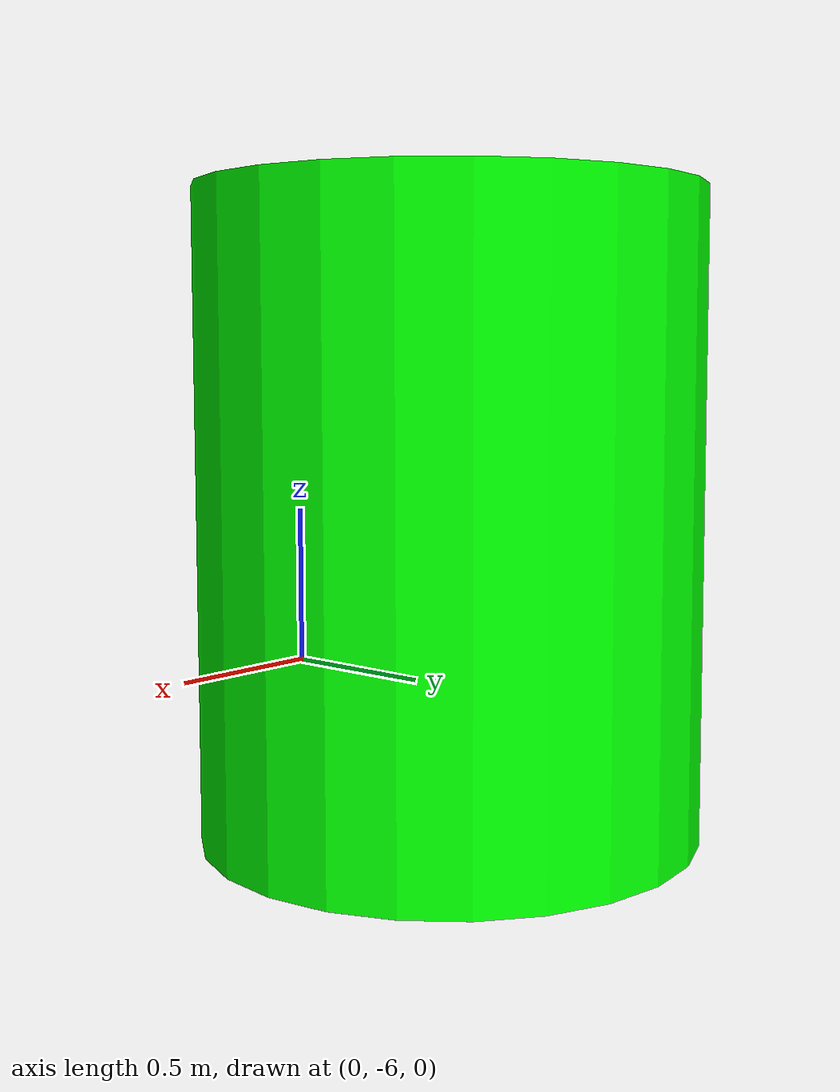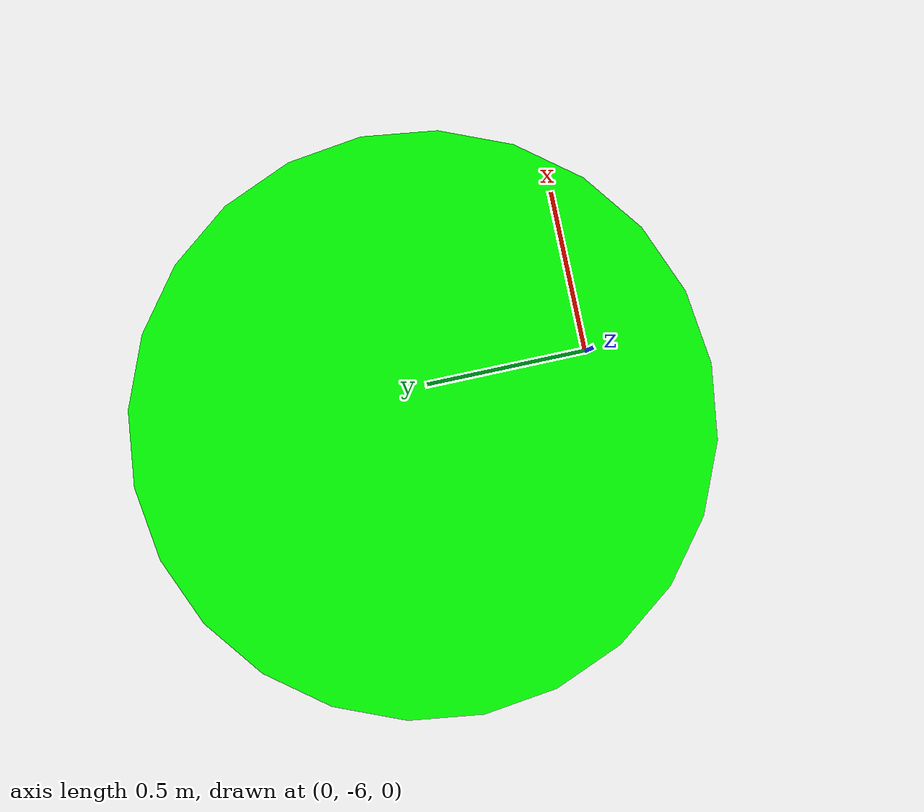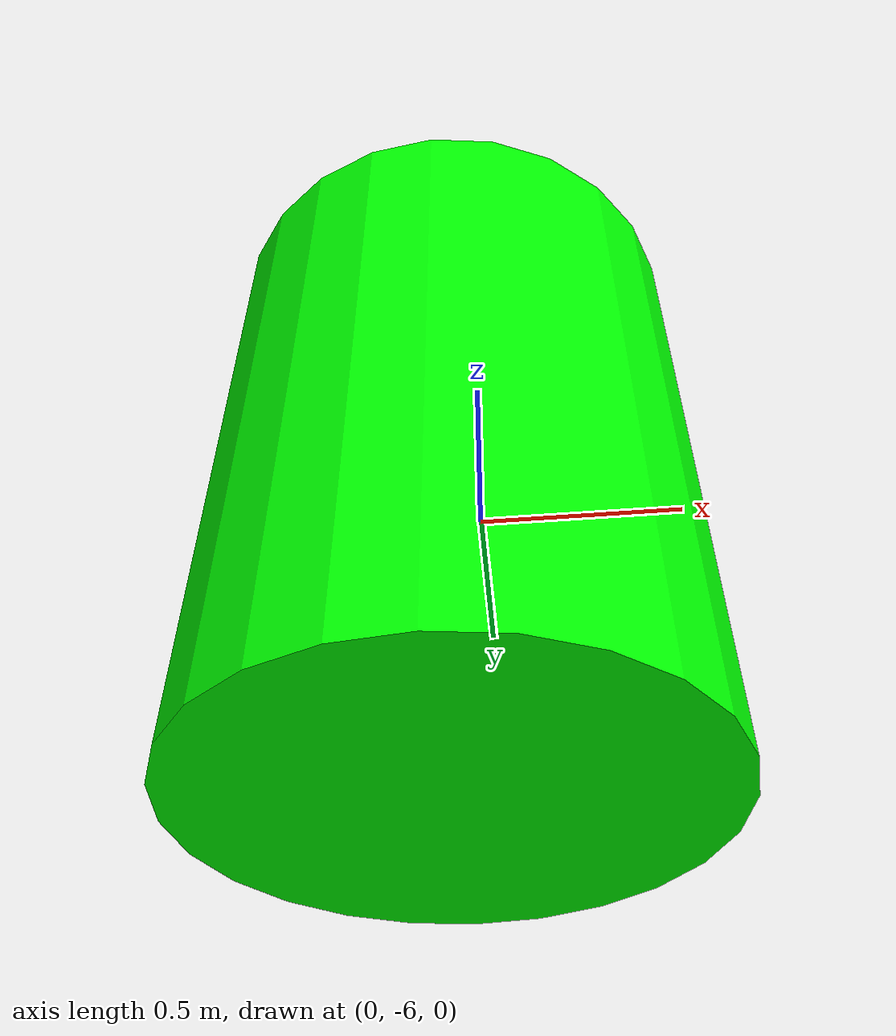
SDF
<sdf version='1.6'>
    <model name='cyl_2'>
      <pose>-0.12 -5.46 0.5 0 -0 0</pose>
      <link name='cylinder_link'>
        <inertial>
          <inertia>
            <ixx>0.14580000000000001</ixx>
            <ixy>0</ixy>
            <ixz>0</ixz>
            <iyy>0.14580000000000001</iyy>
            <iyz>0</iyz>
            <izz>0.125</izz>
          </inertia>
          <mass>1</mass>
          <pose>0 0 0 0 -0 0</pose>
        </inertial>
        <collision name='cylinder_collision'>
          <geometry>
            <cylinder>
              <radius>0.78</radius>
              <length>2.01</length>
            </cylinder>
          </geometry>
          <surface>
            <friction>
              <ode/>
            </friction>
            <bounce/>
            <contact/>
          </surface>
        </collision>
        <visual name='cylinder_visual'>
          <geometry>
            <cylinder>
              <radius>0.78</radius>
              <length>2.01</length>
            </cylinder>
          </geometry>
          <material>
            <ambient>0 1 0 1</ambient>
            <diffuse>0 1 0 1</diffuse>
            <specular>0 1 0 1</specular>
          </material>
        </visual>
        <pose>0 0 0 0 -0 0</pose>
        <enable_wind>false</enable_wind>
      </link>
      <static>false</static>
      <self_collide>false</self_collide>
    </model>
    </sdf>
